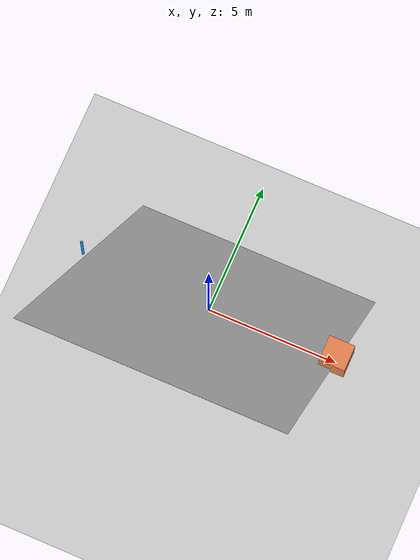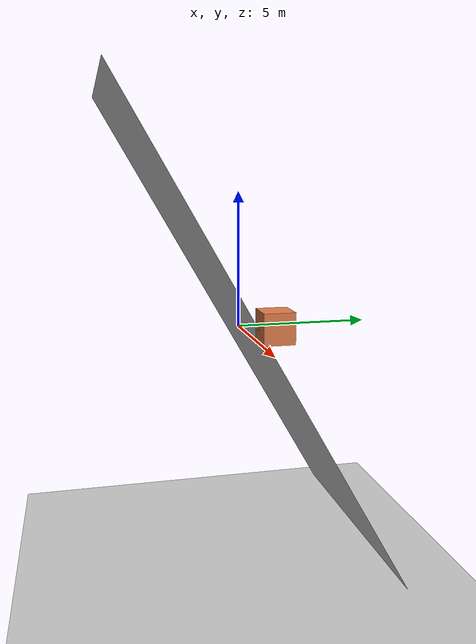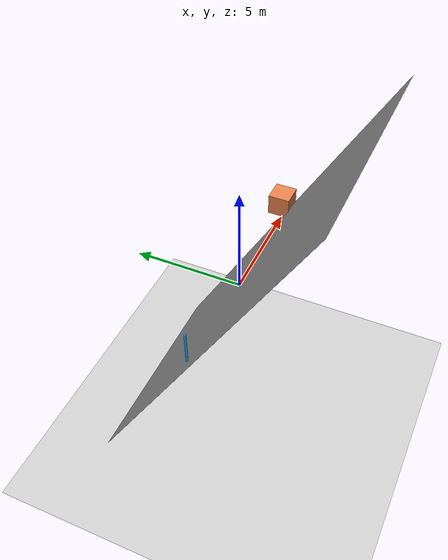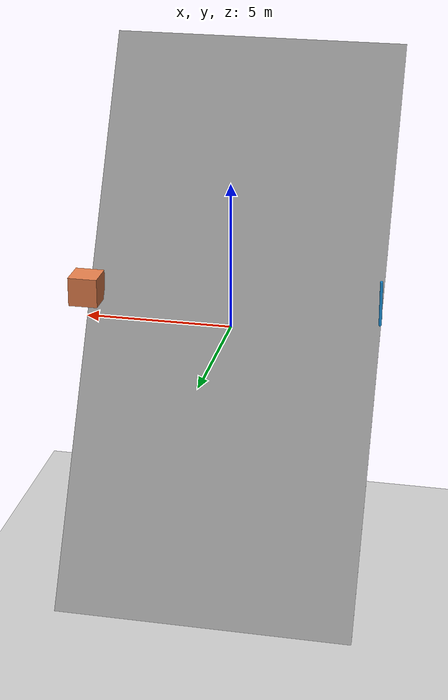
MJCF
<mujoco model="22.1">
  <!-- Set gravity -->
  <option gravity="0 0 -9.81"/>

  <!-- Worldbody contains all bodies -->
  <worldbody>

    <!-- Ramp Body -->
    <body name="ramp" pos="0 0 0">
      <!-- Ramp geometry -->
      <geom type="plane" size="5 10 0.1" rgba="0.6 0.6 0.6 1" friction="0.001 0.001 0" quat="0.5 0.86 0 0"/>
    </body>

    <!-- Surface Body -->
    <body name="surface" pos="-10 0 -10">
      <!-- Surface geometry -->
      <geom type="plane" size="30 30 0.1" rgba="0.8 0.8 0.8 1" friction="1 1 1"/>
    </body>

    <!-- Pendulum Body -->
    <body name="pendulum" pos="-5 0 2">
      <!-- Corrected pendulum geometry (capsule) without fromto -->
      <!-- Capsule from (0, 0, 0) to (0, 0, -1.5) → pos at center and length = 1.5 -->
      <geom type="capsule" pos="0 0 -0.75" size="0.05 0.75" rgba="0.1 0.6 0.9 1" />
      <!-- Pendulum joint (hinge) -->
      <joint name="pendulum_joint" type="hinge" axis="0 1 0"/>
    </body>

    <!-- Block Body -->
    <body name="block" pos="5 0 1">
      <!-- Block geometry (box) -->
      <geom type="box" size="0.5 0.5 0.5" density="1.1" rgba="0.9 0.5 0.3 1" friction="0.001 0.001 0"/>
      <!-- Block joint (free) -->
      <joint name="block_joint" type="free"/>
    </body>

  </worldbody>
</mujoco>
